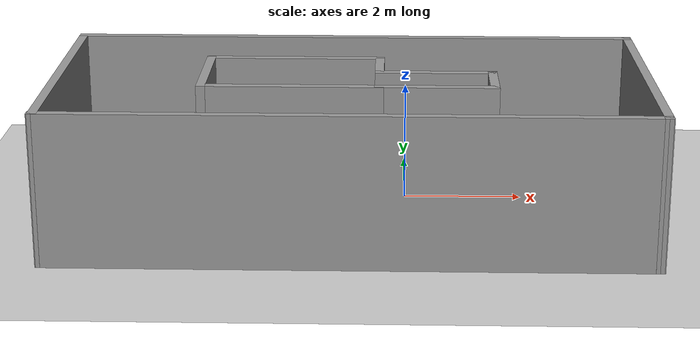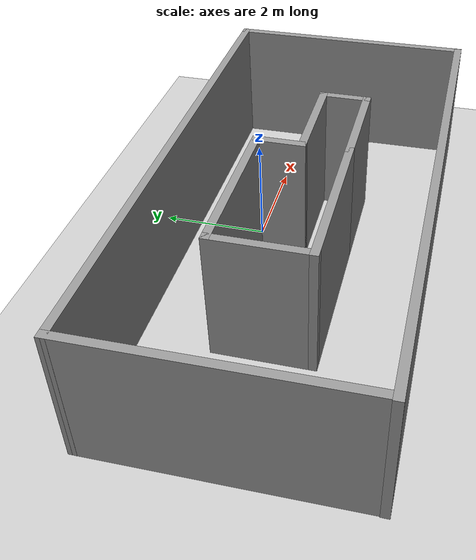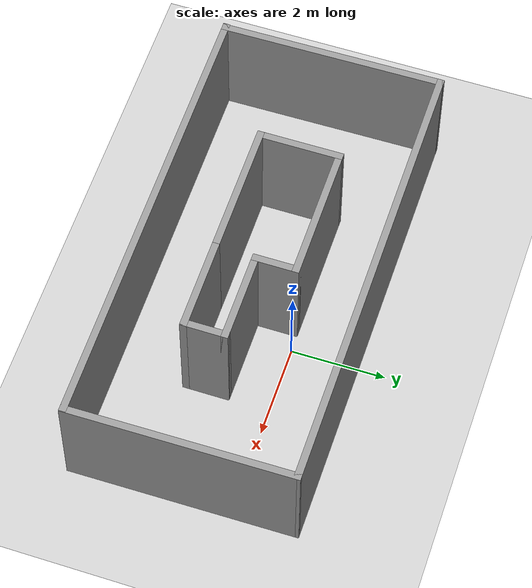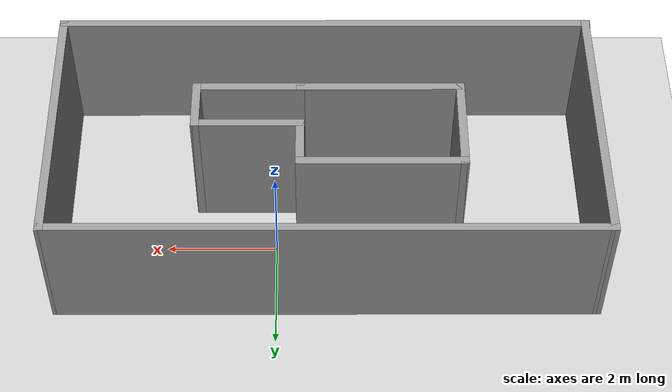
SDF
<sdf version="1.6">
 <world name="default">
  <light name="sun" type="directional">
   <pose>0 0 10 0 -0 0</pose>
   <diffuse>0.8 0.8 0.8 1</diffuse>
   <specular>0.1 0.1 0.1 1</specular>
   <attenuation>
    <range>1000</range>
    <constant>0.9</constant>
    <linear>0.01</linear>
    <quadratic>0.001</quadratic>
   </attenuation>
   <direction>-0.5 0.5 -1</direction>
  </light>
  <model name="ground_plane">
   <static>1</static>
   <link name="link">
    <collision name="collision">
     <geometry><plane><normal>0 0 1</normal><size>100 100</size></plane></geometry>
     <surface><friction><ode><mu>100</mu><mu2>50</mu2></ode></friction></surface>
    </collision>
    <visual name="visual">
     <cast_shadows>0</cast_shadows>
     <geometry><plane><normal>0 0 1</normal><size>100 100</size></plane></geometry>
     <material>
      <script><uri>file://media/materials/scripts/gazebo.material</uri><name>Gazebo/Grey</name></script>
     </material>
    </visual>
   </link>
  </model>
  <gravity>0 0 -9.8</gravity>
  <magnetic_field>6e-06 2.3e-05 -4.2e-05</magnetic_field>
  <atmosphere type="adiabatic"/>
  <physics name="default_physics" default="0" type="ode">
   <max_step_size>0.001</max_step_size>
   <real_time_factor>1</real_time_factor>
   <real_time_update_rate>1000</real_time_update_rate>
  </physics>
  <scene><ambient>0.4 0.4 0.4 1</ambient><background>0.7 0.7 0.7 1</background><shadows>1</shadows></scene>
  <spherical_coordinates>
   <surface_model>EARTH_WGS84</surface_model>
   <latitude_deg>0</latitude_deg>
   <longitude_deg>0</longitude_deg>
   <elevation>0</elevation>
   <heading_deg>0</heading_deg>
  </spherical_coordinates>
  <model name="my_test_worlds">
   <pose>-0.883113 -0.984 0 0 -0 0</pose>
   <link name="Wall_12">
    <collision name="Wall_12_Collision">
     <geometry><box><size>4.83447 0.15 2.5</size></box></geometry>
     <pose>0 0 1.25 0 -0 0</pose>
    </collision>
    <visual name="Wall_12_Visual">
     <pose>0 0 1.25 0 -0 0</pose>
     <geometry><box><size>4.83447 0.15 2.5</size></box></geometry>
     <material>
      <script><uri>file://media/materials/scripts/gazebo.material</uri><name>Gazebo/Grey</name></script>
      <ambient>1 1 1 1</ambient>
     </material>
    </visual>
    <pose>4.8 0 0 0 0 -1.56233</pose>
   </link>
   <link name="Wall_15">
    <collision name="Wall_15_Collision">
     <geometry><box><size>3 0.15 2.5</size></box></geometry>
     <pose>0 0 1.25 0 -0 0</pose>
    </collision>
    <visual name="Wall_15_Visual">
     <pose>0 0 1.25 0 -0 0</pose>
     <geometry><box><size>3 0.15 2.5</size></box></geometry>
     <material>
      <script><uri>file://media/materials/scripts/gazebo.material</uri><name>Gazebo/Grey</name></script>
      <ambient>1 1 1 1</ambient>
     </material>
    </visual>
    <pose>-0.974662 0.913925 0 0 -0 0</pose>
   </link>
   <link name="Wall_16">
    <collision name="Wall_16_Collision">
     <geometry><box><size>1 0.15 2.5</size></box></geometry>
     <pose>0 0 1.25 0 -0 0</pose>
    </collision>
    <visual name="Wall_16_Visual">
     <pose>0 0 1.25 0 -0 0</pose>
     <geometry><box><size>1 0.15 2.5</size></box></geometry>
     <material>
      <script><uri>file://media/materials/scripts/gazebo.material</uri><name>Gazebo/Grey</name></script>
      <ambient>1 1 1 1</ambient>
     </material>
    </visual>
    <pose>0.450338 0.488925 0 0 0 -1.5708</pose>
   </link>
   <link name="Wall_17">
    <collision name="Wall_17_Collision">
     <geometry><box><size>2 0.15 2.5</size></box></geometry>
     <pose>0 0 1.25 0 -0 0</pose>
    </collision>
    <visual name="Wall_17_Visual">
     <pose>0 0 1.25 0 -0 0</pose>
     <geometry><box><size>2 0.15 2.5</size></box></geometry>
     <material>
      <script><uri>file://media/materials/scripts/gazebo.material</uri><name>Gazebo/Grey</name></script>
      <ambient>1 1 1 1</ambient>
     </material>
    </visual>
    <pose>1.37534 0.063925 0 0 -0 0</pose>
   </link>
   <link name="Wall_18">
    <collision name="Wall_18_Collision">
     <geometry><box><size>1 0.15 2.5</size></box></geometry>
     <pose>0 0 1.25 0 -0 0</pose>
    </collision>
    <visual name="Wall_18_Visual">
     <pose>0 0 1.25 0 -0 0</pose>
     <geometry><box><size>1 0.15 2.5</size></box></geometry>
     <material>
      <script><uri>file://media/materials/scripts/gazebo.material</uri><name>Gazebo/Grey</name></script>
      <ambient>1 1 1 1</ambient>
     </material>
    </visual>
    <pose>2.30034 -0.361075 0 0 0 -1.5708</pose>
   </link>
   <link name="Wall_19">
    <collision name="Wall_19_Collision">
     <geometry><box><size>2 0.15 2.5</size></box></geometry>
     <pose>0 0 1.25 0 -0 0</pose>
    </collision>
    <visual name="Wall_19_Visual">
     <pose>0 0 1.25 0 -0 0</pose>
     <geometry><box><size>2 0.15 2.5</size></box></geometry>
     <material>
      <script><uri>file://media/materials/scripts/gazebo.material</uri><name>Gazebo/Grey</name></script>
      <ambient>1 1 1 1</ambient>
     </material>
    </visual>
    <pose>1.37534 -0.786075 0 0 -0 3.14159</pose>
   </link>
   <link name="Wall_20">
    <collision name="Wall_20_Collision">
     <geometry><box><size>3 0.15 2.5</size></box></geometry>
     <pose>0 0 1.25 0 -0 0</pose>
    </collision>
    <visual name="Wall_20_Visual">
     <pose>0 0 1.25 0 -0 0</pose>
     <geometry><box><size>3 0.15 2.5</size></box></geometry>
     <material>
      <script><uri>file://media/materials/scripts/gazebo.material</uri><name>Gazebo/Grey</name></script>
      <ambient>1 1 1 1</ambient>
     </material>
    </visual>
    <pose>-0.974662 -0.786075 0 0 -0 3.14159</pose>
   </link>
   <link name="Wall_21">
    <collision name="Wall_21_Collision">
     <geometry><box><size>1.85 0.15 2.5</size></box></geometry>
     <pose>0 0 1.25 0 -0 0</pose>
    </collision>
    <visual name="Wall_21_Visual">
     <pose>0 0 1.25 0 -0 0</pose>
     <geometry><box><size>1.85 0.15 2.5</size></box></geometry>
     <material>
      <script><uri>file://media/materials/scripts/gazebo.material</uri><name>Gazebo/Grey</name></script>
      <ambient>1 1 1 1</ambient>
     </material>
    </visual>
    <pose>-2.39966 0.063925 0 0 -0 1.5708</pose>
   </link>
   <link name="Wall_4">
    <collision name="Wall_4_Collision">
     <geometry><box><size>9.75 0.15 2.5</size></box></geometry>
     <pose>0 0 1.25 0 -0 0</pose>
    </collision>
    <visual name="Wall_4_Visual">
     <pose>0 0 1.25 0 -0 0</pose>
     <geometry><box><size>9.75 0.15 2.5</size></box></geometry>
     <material>
      <script><uri>file://media/materials/scripts/gazebo.material</uri><name>Gazebo/Grey</name></script>
      <ambient>1 1 1 1</ambient>
     </material>
    </visual>
    <pose>-0.019837 2.34223 0 0 -0 0</pose>
   </link>
   <link name="Wall_8">
    <collision name="Wall_8_Collision">
     <geometry><box><size>4.83447 0.15 2.5</size></box></geometry>
     <pose>0 0 1.25 0 -0 0</pose>
    </collision>
    <visual name="Wall_8_Visual">
     <pose>0 0 1.25 0 -0 0</pose>
     <geometry><box><size>4.83447 0.15 2.5</size></box></geometry>
     <material>
      <script><uri>file://media/materials/scripts/gazebo.material</uri><name>Gazebo/Grey</name></script>
      <ambient>1 1 1 1</ambient>
     </material>
    </visual>
    <pose>-4.8 0 0 0 0 -1.56233</pose>
   </link>
   <link name="Wall_9">
    <collision name="Wall_9_Collision">
     <geometry><box><size>9.75 0.15 2.5</size></box></geometry>
     <pose>0 0 1.25 0 -0 0</pose>
    </collision>
    <visual name="Wall_9_Visual">
     <pose>0 0 1.25 0 -0 0</pose>
     <geometry><box><size>9.75 0.15 2.5</size></box></geometry>
     <material>
      <script><uri>file://media/materials/scripts/gazebo.material</uri><name>Gazebo/Grey</name></script>
      <ambient>1 1 1 1</ambient>
     </material>
    </visual>
    <pose>0.006613 -2.34223 0 0 -0 0</pose>
   </link>
   <static>1</static>
  </model>
 </world>
</sdf>
